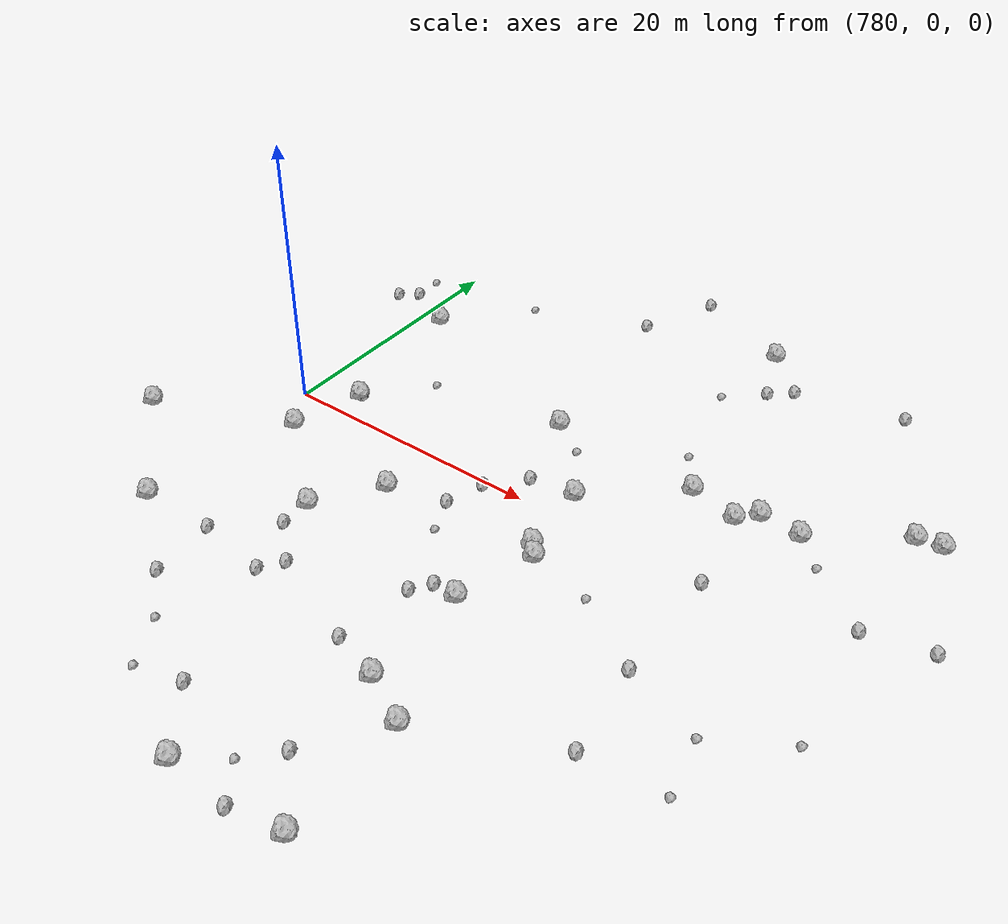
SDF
<sdf version="1.6">
 <world name="default">
  <include><uri>model://sun</uri></include>
  <model name="rock1_20_4">
   <include><uri>model://rock1</uri><pose>802.7526041826828 2.369103076853712 0.5 0 0 0</pose></include>
  </model>
  <model name="rock1_20_5">
   <include><uri>model://rock1</uri><pose>824.6869153824152 12.32538956952478 0.5 0 0 0</pose></include>
  </model>
  <model name="rock1_20_6">
   <include><uri>model://rock1</uri><pose>813.7315887222047 8.061230308999505 0.5 0 0 0</pose></include>
  </model>
  <model name="rock1_20_7">
   <include><uri>model://rock1</uri><pose>816.8281676123928 7.803358262690743 0.5 0 0 0</pose></include>
  </model>
  <model name="rock1_20_8">
   <include><uri>model://rock1</uri><pose>822.909640977305 12.073154881107243 0.5 0 0 0</pose></include>
  </model>
  <model name="rock1_20_9">
   <include><uri>model://rock1</uri><pose>798.1650352417828 -29.203313833878294 0.5 0 0 0</pose></include>
  </model>
  <model name="rock1_20_10">
   <include><uri>model://rock1</uri><pose>806.7388561230313 -28.863933523830163 0.5 0 0 0</pose></include>
  </model>
  <model name="rock1_20_11">
   <include><uri>model://rock1</uri><pose>797.3334412187482 8.137843832582867 0.5 0 0 0</pose></include>
  </model>
  <model name="rock1_20_12">
   <include><uri>model://rock1</uri><pose>806.4587579054909 -19.789433510409914 0.5 0 0 0</pose></include>
  </model>
  <model name="rock1_20_13">
   <include><uri>model://rock1</uri><pose>802.606385015238 -9.992268842997749 0.5 0 0 0</pose></include>
  </model>
  <model name="rock1_20_14">
   <include><uri>model://rock1</uri><pose>782.1295299180528 -3.2538702308570286 0.5 0 0 0</pose></include>
  </model>
  <model name="rock1_20_15">
   <include><uri>model://rock1</uri><pose>804.2418445285572 -4.17594009440608 0.5 0 0 0</pose></include>
  </model>
  <model name="rock1_20_16">
   <include><uri>model://rock1</uri><pose>808.7912592318999 7.632927537707552 0.5 0 0 0</pose></include>
  </model>
  <model name="rock1_20_17">
   <include><uri>model://rock1</uri><pose>779.8212529174687 -14.823204606872697 0.5 0 0 0</pose></include>
  </model>
  <model name="rock1_20_18">
   <include><uri>model://rock1</uri><pose>781.6644187354582 13.557833335895644 0.5 0 0 0</pose></include>
  </model>
  <model name="rock1_20_19">
   <include><uri>model://rock1</uri><pose>812.5273913534776 6.740779812939849 0.5 0 0 0</pose></include>
  </model>
  <model name="rock1_20_20">
   <include><uri>model://rock1</uri><pose>789.1080900831134 -9.09871860977104 0.5 0 0 0</pose></include>
  </model>
  <model name="rock1_20_21">
   <include><uri>model://rock1</uri><pose>771.8779180999851 -7.450449866913946 0.5 0 0 0</pose></include>
  </model>
  <model name="rock1_20_22">
   <include><uri>model://rock1</uri><pose>792.106344403726 -4.547456761140776 0.5 0 0 0</pose></include>
  </model>
  <model name="rock1_20_23">
   <include><uri>model://rock1</uri><pose>803.4648607924601 -3.290531176743606 0.5 0 0 0</pose></include>
  </model>
  <model name="rock1_20_24">
   <include><uri>model://rock1</uri><pose>783.5264450364828 2.1403982567384148 0.5 0 0 0</pose></include>
  </model>
  <model name="rock1_20_25">
   <include><uri>model://rock1</uri><pose>802.8906877457902 -17.999561899715786 0.5 0 0 0</pose></include>
  </model>
  <model name="rock1_20_26">
   <include><uri>model://rock1</uri><pose>805.4608519033907 25.035382370365667 0.5 0 0 0</pose></include>
  </model>
  <model name="rock2_20_0">
   <include><uri>model://rock2</uri><pose>789.2468217611388 -11.455076670763027 0.3 0 0 0</pose></include>
  </model>
  <model name="rock2_20_1">
   <include><uri>model://rock2</uri><pose>799.9319759296809 -11.321987392769646 0.3 0 0 0</pose></include>
  </model>
  <model name="rock2_20_2">
   <include><uri>model://rock2</uri><pose>797.2212320828719 -0.5442161355393011 0.3 0 0 0</pose></include>
  </model>
  <model name="rock2_20_3">
   <include><uri>model://rock2</uri><pose>807.3522069296552 20.377777327031836 0.3 0 0 0</pose></include>
  </model>
  <model name="rock2_20_4">
   <include><uri>model://rock2</uri><pose>786.1330000425187 -19.541284435112182 0.3 0 0 0</pose></include>
  </model>
  <model name="rock2_20_5">
   <include><uri>model://rock2</uri><pose>797.7545017962913 28.307822642178934 0.3 0 0 0</pose></include>
  </model>
  <model name="rock2_20_6">
   <include><uri>model://rock2</uri><pose>803.0615146829591 -24.847466629508247 0.3 0 0 0</pose></include>
  </model>
  <model name="rock2_20_7">
   <include><uri>model://rock2</uri><pose>814.5261602516634 -8.60608096718315 0.3 0 0 0</pose></include>
  </model>
  <model name="rock2_20_8">
   <include><uri>model://rock2</uri><pose>828.3220749667449 3.375871655904433 0.3 0 0 0</pose></include>
  </model>
  <model name="rock2_20_9">
   <include><uri>model://rock2</uri><pose>799.2902414794482 -16.880149014116366 0.3 0 0 0</pose></include>
  </model>
  <model name="rock2_20_10">
   <include><uri>model://rock2</uri><pose>814.063737145935 0.18845037854073965 0.3 0 0 0</pose></include>
  </model>
  <model name="rock2_20_11">
   <include><uri>model://rock2</uri><pose>796.4095475654565 -3.383366107816723 0.3 0 0 0</pose></include>
  </model>
  <model name="rock2_20_12">
   <include><uri>model://rock2</uri><pose>777.91665627747 15.451210010254087 0.3 0 0 0</pose></include>
  </model>
  <model name="rock2_20_13">
   <include><uri>model://rock2</uri><pose>783.7792637464509 2.265098571083996 0.3 0 0 0</pose></include>
  </model>
  <model name="rock2_20_14">
   <include><uri>model://rock2</uri><pose>776.6174673544931 14.436855300810414 0.3 0 0 0</pose></include>
  </model>
  <model name="rock2_20_15">
   <include><uri>model://rock2</uri><pose>794.6135549200841 -24.925390166289304 0.3 0 0 0</pose></include>
  </model>
  <model name="rock2_20_16">
   <include><uri>model://rock2</uri><pose>823.7520099446723 2.289974461616012 0.3 0 0 0</pose></include>
  </model>
  <model name="rock2_20_17">
   <include><uri>model://rock2</uri><pose>795.3148211142444 22.652110083644466 0.3 0 0 0</pose></include>
  </model>
  <model name="rock2_20_18">
   <include><uri>model://rock2</uri><pose>785.5856590776013 -14.769631173323658 0.3 0 0 0</pose></include>
  </model>
  <model name="rock2_20_19">
   <include><uri>model://rock2</uri><pose>800.8295825479964 -9.955015921740554 0.3 0 0 0</pose></include>
  </model>
  <model name="rock2_20_20">
   <include><uri>model://rock2</uri><pose>815.6002547393991 -15.417893898596052 0.3 0 0 0</pose></include>
  </model>
  <model name="rock2_20_21">
   <include><uri>model://rock2</uri><pose>808.8862660911756 21.72677565425647 0.3 0 0 0</pose></include>
  </model>
  <model name="rock2_20_22">
   <include><uri>model://rock2</uri><pose>792.0542304059303 -14.045042843696123 0.3 0 0 0</pose></include>
  </model>
  <model name="rock2_20_23">
   <include><uri>model://rock2</uri><pose>799.3889928625464 1.93800095042495 0.3 0 0 0</pose></include>
  </model>
  <model name="rock2_20_24">
   <include><uri>model://rock2</uri><pose>803.007227917046 -29.573383890554087 0.3 0 0 0</pose></include>
  </model>
  <model name="rock2_20_25">
   <include><uri>model://rock2</uri><pose>791.0127663794966 -15.625244570277468 0.3 0 0 0</pose></include>
  </model>
  <model name="rock2_20_26">
   <include><uri>model://rock2</uri><pose>816.8336427393035 23.583191414010862 0.3 0 0 0</pose></include>
  </model>
  <model name="rock3_20_0">
   <include><uri>model://rock3</uri><pose>786.7440433179838 19.281452603560084 0.2 0 0 0</pose></include>
  </model>
  <model name="rock3_20_1">
   <include><uri>model://rock3</uri><pose>804.7805367440435 18.046240097368866 0.2 0 0 0</pose></include>
  </model>
  <model name="rock3_20_2">
   <include><uri>model://rock3</uri><pose>809.078339526356 -5.321613886515095 0.2 0 0 0</pose></include>
  </model>
  <model name="rock3_20_3">
   <include><uri>model://rock3</uri><pose>825.2086281202553 -7.602820806881198 0.2 0 0 0</pose></include>
  </model>
  <model name="rock3_20_4">
   <include><uri>model://rock3</uri><pose>787.165147507165 6.530560547970971 0.2 0 0 0</pose></include>
  </model>
  <model name="rock3_20_5">
   <include><uri>model://rock3</uri><pose>789.1709744915117 -22.389464560223637 0.2 0 0 0</pose></include>
  </model>
  <model name="rock3_20_6">
   <include><uri>model://rock3</uri><pose>791.1734194754318 -25.810659365141095 0.2 0 0 0</pose></include>
  </model>
  <model name="rock3_20_7">
   <include><uri>model://rock3</uri><pose>777.7305295773374 17.70154431563889 0.2 0 0 0</pose></include>
  </model>
  <model name="rock3_20_8">
   <include><uri>model://rock3</uri><pose>821.3047896052828 -14.895684402320589 0.2 0 0 0</pose></include>
  </model>
  <model name="rock3_20_9">
   <include><uri>model://rock3</uri><pose>806.6387460665222 10.529524663525805 0.2 0 0 0</pose></include>
  </model>
  <model name="rock3_20_10">
   <include><uri>model://rock3</uri><pose>800.9933067900275 -27.04976201338682 0.2 0 0 0</pose></include>
  </model>
  <model name="rock3_20_11">
   <include><uri>model://rock3</uri><pose>820.3060390477831 -10.633067466548876 0.2 0 0 0</pose></include>
  </model>
  <model name="rock3_20_12">
   <include><uri>model://rock3</uri><pose>800.1100958638888 6.282593624302017 0.2 0 0 0</pose></include>
  </model>
  <model name="rock3_20_13">
   <include><uri>model://rock3</uri><pose>819.0862837355181 5.70202515075956 0.2 0 0 0</pose></include>
  </model>
  <model name="rock3_20_14">
   <include><uri>model://rock3</uri><pose>797.4721650210787 -5.961957581960007 0.2 0 0 0</pose></include>
  </model>
 </world>
</sdf>
